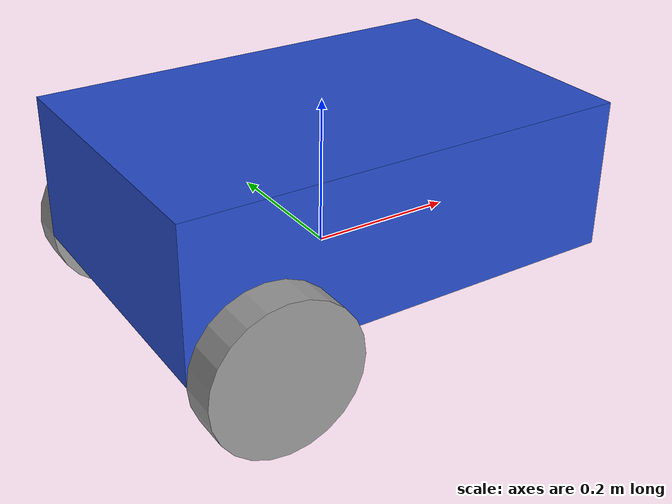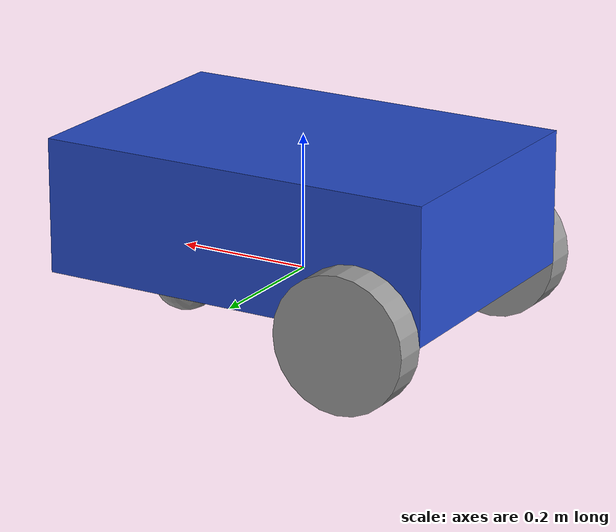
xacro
<?xml version="1.0"?>
<robot xmlns:xacro = "http://www.ros.org/wiki/xacro">

    <!-- making variables using "xacro:property" -->
    <xacro:property name="base_length" value="0.6" />
    <xacro:property name="base_width" value="0.4" />
    <xacro:property name="base_height" value="0.2" />
    <xacro:property name="wheel_radius" value="0.1" />
    <xacro:property name="wheel_length" value="0.05" />

    <link name="base_footprint"/>

    <link name="base_link">
      <visual>
        <geometry>
           <box size="${base_length} ${base_width} ${base_height}" />
        </geometry>
        <origin xyz="0 0 ${base_height/2.0}" rpy="0 0 0" />
        <material name="blue" />
      </visual>
      <collision>
        <geometry>
            <box size="${base_length} ${base_width} ${base_height}" />
        </geometry>
        <origin xyz="0 0 ${base_height/2.0}" rpy="0 0 0" />
      </collision>
      <xacro:box_inertia m="5.0" l="${2*base_length}" w="${2*base_width}"
      h="${2*base_height}" xyz="0 0 ${base_height/2.0}" rpy="0 0 0"/>
    </link>

    <joint name="base_footprint"  type="fixed">
        <parent link = "base_link" />
        <child link = "base_footprint" />
        <origin xyz="0 0 ${-base_height/2.0}" rpy="0 0 0" />
        <axis xyz="0 0 0" />
    </joint>

    <joint name="base_right_wheel"  type="continuous">
        <parent link = "base_link" />
        <child link = "right_wheel" />
        <origin xyz="${-base_length/3.0} ${-base_width*0.5625} 0" rpy="0 0 0" />
        <axis xyz="0 1 0" />
    </joint>

    <!-- making function for right and left wheels using "xacro:macro" -->
    <xacro:macro name = "wheel_link" params = "prefix" >
        <link name="${prefix}_wheel">
            <visual>
                <geometry>
                    <cylinder radius="${wheel_radius}" length="${wheel_length}" />
                </geometry>
                <origin xyz ="0 0 0" rpy="${pi/2.0} 0 0" />
                <material name="grey" />
            </visual>
            <collision>
                <geometry>
                    <cylinder radius="${wheel_radius}" length="${wheel_length}" />
                </geometry>
                <origin xyz ="0 0 0" rpy="${pi/2.0} 0 0" />
            </collision>
            <xacro:solid-cylinder_inertia m= "2.0" r= "${2*wheel_radius}"  h="${2*wheel_length}"
                         xyz="0 0 0" rpy="${pi/2.0} 0 0"/>
        </link>
    </xacro:macro>

    <!-- to make right wheel -->
    <xacro:wheel_link prefix = "right" />

    <!-- to make right wheel -->
    <xacro:wheel_link prefix = "left" />

    <joint name="base_left_wheel"  type="continuous">
        <parent link = "base_link" />
        <child link = "left_wheel" />
        <origin xyz="${-base_length/3.0} ${base_width*0.5625} 0" rpy="0 0 0" />
        <axis xyz="0 1 0" />
    </joint>

    <joint name="base_castor_wheel"  type="fixed">
        <parent link = "base_link" />
        <child link = "castor_wheel" />
        <origin xyz="${base_length/3.0} 0 ${-base_height/4.0}" rpy="0 0 0" />
    </joint>

    <link name="castor_wheel">
        <visual>
           <geometry>
               <sphere radius="${wheel_radius/2.0}" />
           </geometry>
           <origin xyz ="0 0 0" rpy="${pi/2.0} 0 0" />
           <material name="grey" />
        </visual>
        <collision>
            <geometry>
                <sphere radius="${wheel_radius/2.0}" />
            </geometry>
            <origin xyz ="0 0 0" rpy="${pi/2.0} 0 0" />
        </collision>
        <xacro:solid-sphere_inertia m= "1.0" r= "${2*wheel_radius/2.0}" xyz= "0 0 0" rpy= "${pi/2.0} 0 0"/>
    </link>

</robot>
